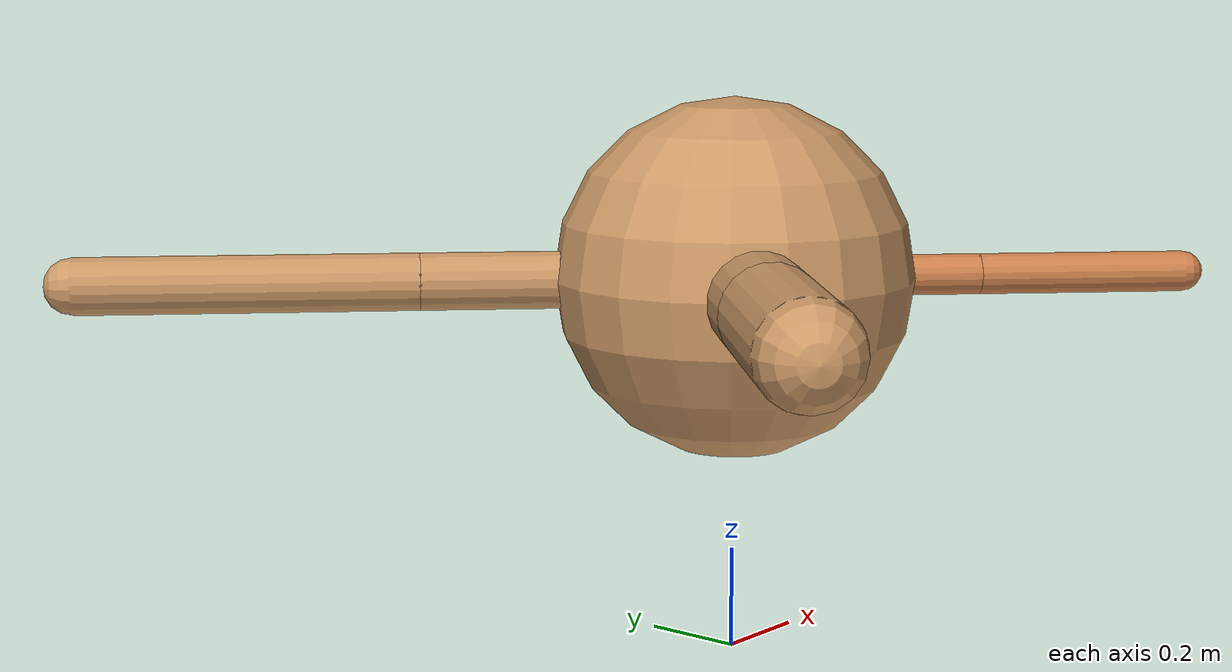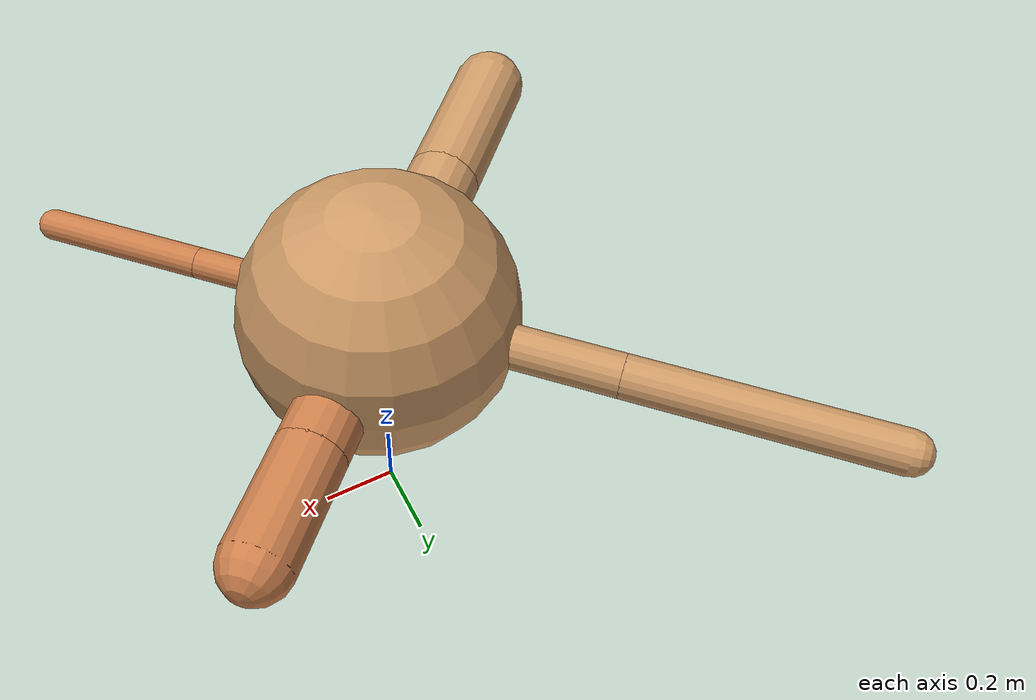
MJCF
<?xml version="1.0" ?>
<mujoco model="ant">

	<compiler angle="degree" coordinate="local" inertiafromgeom="true"/>

	<option integrator="RK4" timestep="0.01"/>

	<custom>

		<numeric data="0.0 0.0 0.55 1.0 0.0 0.0 0.0 0.0 1.0 0.0 -1.0 0.0 -1.0 0.0 1.0" name="init_qpos"/>

	</custom>

	<default>

		<joint armature="1" damping="1" limited="true"/>

		<geom conaffinity="0" condim="3" density="5.0" friction="1.5 0.1 0.1" margin="0.01" rgba="0.8 0.6 0.4 1"/>

	</default>

	<worldbody>

		<body name="torso" pos="0 0 0.75">

			<geom name="torso_geom" pos="0 0 0" size="0.3553172209198357" type="sphere"/>

			<!--joint armature="0" damping="0" limited="false" margin="0.01" name="root" pos="0 0 0" type="free"/-->

			<body name="front_left_leg" pos="0 0 0">

				<geom fromto="0 0 0 0.2 0.2 0" name="aux_1_geom" size="0.09074922700180343" type="capsule" rgba=".8 .5 .3 1"/>

				<body name="aux_1" pos="0.2 0.2 0">

					<joint axis="0 0 1" name="hip_1" pos="0.0 0.0 0.0" range="-40 40" type="hinge"/>

					<geom fromto="0 0 0 0.10439812085286598 0.10439812085286598 0" name="left_leg_geom" size="0.09074922700180343" type="capsule" rgba=".8 .5 .3 1"/>

					<body pos="0.10439812085286598 0.10439812085286598 0" name="front_left_foot">

						<joint axis="-1 1 0" name="ankle_1" pos="0.0 0.0 0.0" range="30 100" type="hinge"/>

						<geom fromto="0 0 0 0.20879624170573197 0.20879624170573197 0" name="left_ankle_geom" size="0.09074922700180343" type="capsule" rgba=".8 .5 .3 1"/>

					</body>

				</body>

			</body>

			<body name="front_right_leg" pos="0 0 0">

				<geom fromto="0 0 0 -0.2 0.2 0" name="aux_2_geom" size="0.05600176918301092" type="capsule"/>

				<body name="aux_2" pos="-0.2 0.2 0">

					<joint axis="0 0 1" name="hip_2" pos="0.0 0.0 0.0" range="-40 40" type="hinge"/>

					<geom fromto="0 0 0 -0.2344744856370861 0.2344744856370861 0" name="right_leg_geom" size="0.05600176918301092" type="capsule"/>

					<body pos="-0.2344744856370861 0.2344744856370861 0" name="front_right_foot">

						<joint axis="1 1 0" name="ankle_2" pos="0.0 0.0 0.0" range="-100 -30" type="hinge"/>

						<geom fromto="0 0 0 -0.4689489712741722 0.4689489712741722 0" name="right_ankle_geom" size="0.05600176918301092" type="capsule"/>

					</body>

				</body>

			</body>

			<body name="left_back_leg" pos="0 0 0">

				<geom fromto="0 0 0 -0.2 -0.2 0" name="aux_3_geom" size="0.09795312380017088" type="capsule"/>

				<body name="aux_3" pos="-0.2 -0.2 0">

					<joint axis="0 0 1" name="hip_3" pos="0.0 0.0 0.0" range="-40 40" type="hinge"/>

					<geom fromto="0 0 0 -0.14126881227193452 -0.14126881227193452 0" name="back_leg_geom" size="0.09795312380017088" type="capsule"/>

					<body pos="-0.14126881227193452 -0.14126881227193452 0" name="left_back_foot">

						<joint axis="-1 1 0" name="ankle_3" pos="0.0 0.0 0.0" range="-100 -30" type="hinge"/>

						<geom fromto="0 0 0 -0.28253762454386905 -0.28253762454386905 0" name="third_ankle_geom" size="0.09795312380017088" type="capsule"/>

					</body>

				</body>

			</body>

			<body name="right_back_leg" pos="0 0 0">

				<geom fromto="0 0 0 0.2 -0.2 0" name="aux_4_geom" size="0.040071482675840916" type="capsule" rgba=".8 .5 .3 1"/>

				<body name="aux_4" pos="0.2 -0.2 0">

					<joint axis="0 0 1" name="hip_4" pos="0.0 0.0 0.0" range="-40 40" type="hinge"/>

					<geom fromto="0 0 0 0.14623491592399446 -0.14623491592399446 0" name="rightback_leg_geom" size="0.040071482675840916" type="capsule" rgba=".8 .5 .3 1"/>

					<body pos="0.14623491592399446 -0.14623491592399446 0" name="right_back_foot">

						<joint axis="1 1 0" name="ankle_4" pos="0.0 0.0 0.0" range="30 100" type="hinge"/>

						<geom fromto="0 0 0 0.2924698318479889 -0.2924698318479889 0" name="fourth_ankle_geom" size="0.040071482675840916" type="capsule" rgba=".8 .5 .3 1"/>

					</body>

				</body>

			</body>

		</body>

	</worldbody>

	<actuator>

		<motor ctrllimited="true" ctrlrange="-1.0 1.0" joint="hip_4" gear="150"/>

		<motor ctrllimited="true" ctrlrange="-1.0 1.0" joint="ankle_4" gear="150"/>

		<motor ctrllimited="true" ctrlrange="-1.0 1.0" joint="hip_1" gear="150"/>

		<motor ctrllimited="true" ctrlrange="-1.0 1.0" joint="ankle_1" gear="150"/>

		<motor ctrllimited="true" ctrlrange="-1.0 1.0" joint="hip_2" gear="150"/>

		<motor ctrllimited="true" ctrlrange="-1.0 1.0" joint="ankle_2" gear="150"/>

		<motor ctrllimited="true" ctrlrange="-1.0 1.0" joint="hip_3" gear="150"/>

		<motor ctrllimited="true" ctrlrange="-1.0 1.0" joint="ankle_3" gear="150"/>

	</actuator>

</mujoco>
